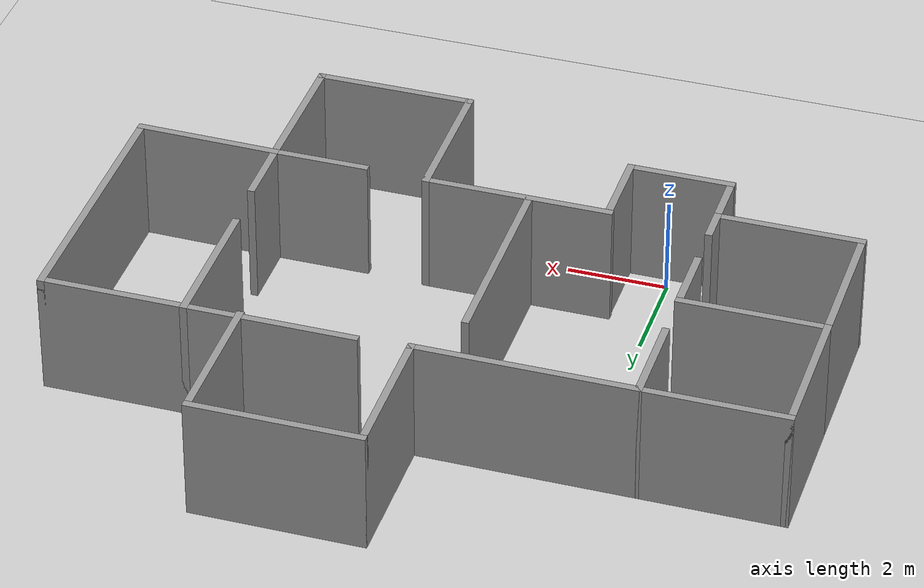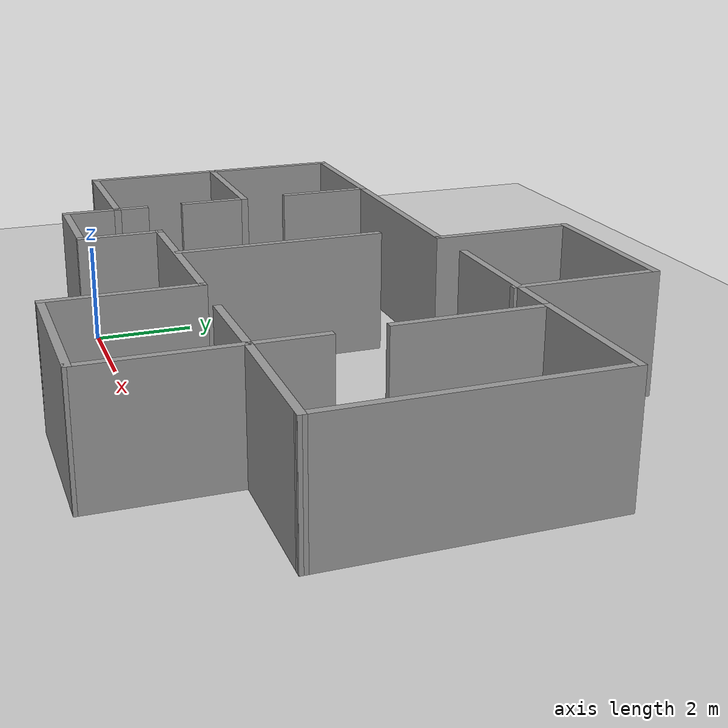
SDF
<sdf version="1.7">
 <world name="default">
  <light name="sun" type="directional">
   <pose>0 0 10 0 -0 0</pose>
   <diffuse>0.8 0.8 0.8 1</diffuse>
   <specular>0.2 0.2 0.2 1</specular>
   <attenuation>
    <range>1000</range>
    <constant>0.9</constant>
    <linear>0.01</linear>
    <quadratic>0.001</quadratic>
   </attenuation>
   <direction>-0.5 0.1 -0.9</direction>
   <spot><inner_angle>0</inner_angle><outer_angle>0</outer_angle><falloff>0</falloff></spot>
  </light>
  <model name="ground_plane">
   <static>1</static>
   <link name="link">
    <collision name="collision">
     <geometry><plane><normal>0 0 1</normal><size>100 100</size></plane></geometry>
     <surface><friction><ode><mu>100</mu><mu2>50</mu2></ode></friction></surface>
    </collision>
    <visual name="visual">
     <cast_shadows>0</cast_shadows>
     <geometry><plane><normal>0 0 1</normal><size>100 100</size></plane></geometry>
     <material>
      <script><uri>file://media/materials/scripts/gazebo.material</uri><name>Gazebo/Grey</name></script>
     </material>
    </visual>
   </link>
  </model>
  <gravity>0 0 -9.8</gravity>
  <magnetic_field>6e-06 2.3e-05 -4.2e-05</magnetic_field>
  <atmosphere type="adiabatic"/>
  <physics type="ode">
   <max_step_size>0.001</max_step_size>
   <real_time_factor>1</real_time_factor>
   <real_time_update_rate>1000</real_time_update_rate>
  </physics>
  <scene><ambient>0.4 0.4 0.4 1</ambient><background>0.7 0.7 0.7 1</background><shadows>1</shadows></scene>
  <spherical_coordinates>
   <surface_model>EARTH_WGS84</surface_model>
   <latitude_deg>0</latitude_deg>
   <longitude_deg>0</longitude_deg>
   <elevation>0</elevation>
   <heading_deg>0</heading_deg>
  </spherical_coordinates>
  <model name="indoors_home3">
   <pose>3.24657 3.85214 0 0 -0 0</pose>
   <link name="Wall_0">
    <collision name="Wall_0_Collision">
     <geometry><box><size>2.16048 0.15 2.5</size></box></geometry>
     <pose>0 0 1.25 0 -0 0</pose>
    </collision>
    <visual name="Wall_0_Visual">
     <pose>0 0 1.25 0 -0 0</pose>
     <geometry><box><size>2.16048 0.15 2.5</size></box></geometry>
     <material>
      <script><uri>file://media/materials/scripts/gazebo.material</uri><name>Gazebo/Grey</name></script>
      <ambient>1 1 1 1</ambient>
     </material>
     <meta><layer>0</layer></meta>
    </visual>
    <pose>-3.38051 -4.19973 0 0 -0 0</pose>
   </link>
   <link name="Wall_1">
    <collision name="Wall_1_Collision">
     <geometry><box><size>1.75 0.15 2.5</size></box></geometry>
     <pose>0 0 1.25 0 -0 0</pose>
    </collision>
    <visual name="Wall_1_Visual">
     <pose>0 0 1.25 0 -0 0</pose>
     <geometry><box><size>1.75 0.15 2.5</size></box></geometry>
     <material>
      <script><uri>file://media/materials/scripts/gazebo.material</uri><name>Gazebo/Grey</name></script>
      <ambient>1 1 1 1</ambient>
     </material>
     <meta><layer>0</layer></meta>
    </visual>
    <pose>-2.35778 -3.39973 0 0 -0 1.5708</pose>
   </link>
   <link name="Wall_10">
    <collision name="Wall_10_Collision">
     <geometry><box><size>0.75 0.15 2.5</size></box></geometry>
     <pose>0 0 1.25 0 -0 0</pose>
    </collision>
    <visual name="Wall_10_Visual">
     <pose>0 0 1.25 0 -0 0</pose>
     <geometry><box><size>0.75 0.15 2.5</size></box></geometry>
     <material>
      <script><uri>file://media/materials/scripts/gazebo.material</uri><name>Gazebo/Grey</name></script>
      <ambient>1 1 1 1</ambient>
     </material>
     <meta><layer>0</layer></meta>
    </visual>
    <pose>-4.38575 -2.79973 0 0 -0 1.5708</pose>
   </link>
   <link name="Wall_12">
    <collision name="Wall_12_Collision">
     <geometry><box><size>3 0.15 2.5</size></box></geometry>
     <pose>0 0 1.25 0 -0 0</pose>
    </collision>
    <visual name="Wall_12_Visual">
     <pose>0 0 1.25 0 -0 0</pose>
     <geometry><box><size>3 0.15 2.5</size></box></geometry>
     <material>
      <script><uri>file://media/materials/scripts/gazebo.material</uri><name>Gazebo/Grey</name></script>
      <ambient>1 1 1 1</ambient>
     </material>
     <meta><layer>0</layer></meta>
    </visual>
    <pose>-7.23574 1.17527 0 0 -0 1.5708</pose>
   </link>
   <link name="Wall_13">
    <collision name="Wall_13_Collision">
     <geometry><box><size>3 0.15 2.5</size></box></geometry>
     <pose>0 0 1.25 0 -0 0</pose>
    </collision>
    <visual name="Wall_13_Visual">
     <pose>0 0 1.25 0 -0 0</pose>
     <geometry><box><size>3 0.15 2.5</size></box></geometry>
     <material>
      <script><uri>file://media/materials/scripts/gazebo.material</uri><name>Gazebo/Grey</name></script>
      <ambient>1 1 1 1</ambient>
     </material>
     <meta><layer>0</layer></meta>
    </visual>
    <pose>-5.81074 2.60027 0 0 -0 0</pose>
   </link>
   <link name="Wall_14">
    <collision name="Wall_14_Collision">
     <geometry><box><size>2 0.15 2.5</size></box></geometry>
     <pose>0 0 1.25 0 -0 0</pose>
    </collision>
    <visual name="Wall_14_Visual">
     <pose>0 0 1.25 0 -0 0</pose>
     <geometry><box><size>2 0.15 2.5</size></box></geometry>
     <material>
      <script><uri>file://media/materials/scripts/gazebo.material</uri><name>Gazebo/Grey</name></script>
      <ambient>1 1 1 1</ambient>
     </material>
     <meta><layer>0</layer></meta>
    </visual>
    <pose>-4.38575 1.67527 0 0 -0 -1.5708</pose>
   </link>
   <link name="Wall_16">
    <collision name="Wall_16_Collision">
     <geometry><box><size>4.5 0.15 2.5</size></box></geometry>
     <pose>0 0 1.25 0 -0 0</pose>
    </collision>
    <visual name="Wall_16_Visual">
     <pose>0 0 1.25 0 -0 0</pose>
     <geometry><box><size>4.5 0.15 2.5</size></box></geometry>
     <material>
      <script><uri>file://media/materials/scripts/gazebo.material</uri><name>Gazebo/Grey</name></script>
      <ambient>1 1 1 1</ambient>
     </material>
     <meta><layer>0</layer></meta>
    </visual>
    <pose>-2.21075 2.60027 0 0 -0 0</pose>
   </link>
   <link name="Wall_18">
    <collision name="Wall_18_Collision">
     <geometry><box><size>4.25 0.15 2.5</size></box></geometry>
     <pose>0 0 1.25 0 -0 0</pose>
    </collision>
    <visual name="Wall_18_Visual">
     <pose>0 0 1.25 0 -0 0</pose>
     <geometry><box><size>4.25 0.15 2.5</size></box></geometry>
     <material>
      <script><uri>file://media/materials/scripts/gazebo.material</uri><name>Gazebo/Grey</name></script>
      <ambient>1 1 1 1</ambient>
     </material>
     <meta><layer>0</layer></meta>
    </visual>
    <pose>-0.774465 -0.501767 0 0 -0 -1.5708</pose>
   </link>
   <link name="Wall_2">
    <collision name="Wall_2_Collision">
     <geometry><box><size>3.83952 0.15 2.5</size></box></geometry>
     <pose>0 0 1.25 0 -0 0</pose>
    </collision>
    <visual name="Wall_2_Visual">
     <pose>0 0 1.25 0 -0 0</pose>
     <geometry><box><size>3.83952 0.15 2.5</size></box></geometry>
     <material>
      <script><uri>file://media/materials/scripts/gazebo.material</uri><name>Gazebo/Grey</name></script>
      <ambient>1 1 1 1</ambient>
     </material>
     <meta><layer>0</layer></meta>
    </visual>
    <pose>-0.530507 -2.59973 0 0 -0 0</pose>
   </link>
   <link name="Wall_27">
    <collision name="Wall_27_Collision">
     <geometry><box><size>3 0.15 2.5</size></box></geometry>
     <pose>0 0 1.25 0 -0 0</pose>
    </collision>
    <visual name="Wall_27_Visual">
     <pose>0 0 1.25 0 -0 0</pose>
     <geometry><box><size>3 0.15 2.5</size></box></geometry>
     <material>
      <script><uri>file://media/materials/scripts/gazebo.material</uri><name>Gazebo/Grey</name></script>
      <ambient>1 1 1 1</ambient>
     </material>
     <meta><layer>0</layer></meta>
    </visual>
    <pose>1.31425 -4.02473 0 0 -0 -1.5708</pose>
   </link>
   <link name="Wall_28">
    <collision name="Wall_28_Collision">
     <geometry><box><size>3.25 0.15 2.5</size></box></geometry>
     <pose>0 0 1.25 0 -0 0</pose>
    </collision>
    <visual name="Wall_28_Visual">
     <pose>0 0 1.25 0 -0 0</pose>
     <geometry><box><size>3.25 0.15 2.5</size></box></geometry>
     <material>
      <script><uri>file://media/materials/scripts/gazebo.material</uri><name>Gazebo/Grey</name></script>
      <ambient>1 1 1 1</ambient>
     </material>
     <meta><layer>0</layer></meta>
    </visual>
    <pose>2.86425 -5.44973 0 0 -0 0</pose>
   </link>
   <link name="Wall_29">
    <collision name="Wall_29_Collision">
     <geometry><box><size>2.95985 0.15 2.5</size></box></geometry>
     <pose>0 0 1.25 0 -0 0</pose>
    </collision>
    <visual name="Wall_29_Visual">
     <pose>0 0 1.25 0 -0 0</pose>
     <geometry><box><size>2.95985 0.15 2.5</size></box></geometry>
     <material>
      <script><uri>file://media/materials/scripts/gazebo.material</uri><name>Gazebo/Grey</name></script>
      <ambient>1 1 1 1</ambient>
     </material>
     <meta><layer>0</layer></meta>
    </visual>
    <pose>4.42431 -4.04485 0 0 -0 1.56364</pose>
   </link>
   <link name="Wall_30">
    <collision name="Wall_30_Collision">
     <geometry><box><size>2 0.15 2.5</size></box></geometry>
     <pose>0 0 1.25 0 -0 0</pose>
    </collision>
    <visual name="Wall_30_Visual">
     <pose>0 0 1.25 0 -0 0</pose>
     <geometry><box><size>2 0.15 2.5</size></box></geometry>
     <material>
      <script><uri>file://media/materials/scripts/gazebo.material</uri><name>Gazebo/Grey</name></script>
      <ambient>1 1 1 1</ambient>
     </material>
     <meta><layer>0</layer></meta>
    </visual>
    <pose>3.50937 -2.63996 0 0 -0 3.14159</pose>
   </link>
   <link name="Wall_32">
    <collision name="Wall_32_Collision">
     <geometry><box><size>1.5 0.15 2.5</size></box></geometry>
     <pose>0 0 1.25 0 -0 0</pose>
    </collision>
    <visual name="Wall_32_Visual">
     <pose>0 0 1.25 0 -0 0</pose>
     <geometry><box><size>1.5 0.15 2.5</size></box></geometry>
     <material>
      <script><uri>file://media/materials/scripts/gazebo.material</uri><name>Gazebo/Grey</name></script>
      <ambient>1 1 1 1</ambient>
     </material>
     <meta><layer>0</layer></meta>
    </visual>
    <pose>4.43437 -1.96496 0 0 -0 1.5708</pose>
   </link>
   <link name="Wall_34">
    <collision name="Wall_34_Collision">
     <geometry><box><size>3 0.15 2.5</size></box></geometry>
     <pose>0 0 1.25 0 -0 0</pose>
    </collision>
    <visual name="Wall_34_Visual">
     <pose>0 0 1.25 0 -0 0</pose>
     <geometry><box><size>3 0.15 2.5</size></box></geometry>
     <material>
      <script><uri>file://media/materials/scripts/gazebo.material</uri><name>Gazebo/Grey</name></script>
      <ambient>1 1 1 1</ambient>
     </material>
     <meta><layer>0</layer></meta>
    </visual>
    <pose>4.38457 1.24094 0 0 -0 1.5708</pose>
   </link>
   <link name="Wall_35">
    <collision name="Wall_35_Collision">
     <geometry><box><size>3 0.15 2.5</size></box></geometry>
     <pose>0 0 1.25 0 -0 0</pose>
    </collision>
    <visual name="Wall_35_Visual">
     <pose>0 0 1.25 0 -0 0</pose>
     <geometry><box><size>3 0.15 2.5</size></box></geometry>
     <material>
      <script><uri>file://media/materials/scripts/gazebo.material</uri><name>Gazebo/Grey</name></script>
      <ambient>1 1 1 1</ambient>
     </material>
     <meta><layer>0</layer></meta>
    </visual>
    <pose>5.80957 2.66594 0 0 -0 0</pose>
   </link>
   <link name="Wall_36">
    <collision name="Wall_36_Collision">
     <geometry><box><size>5.5 0.15 2.5</size></box></geometry>
     <pose>0 0 1.25 0 -0 0</pose>
    </collision>
    <visual name="Wall_36_Visual">
     <pose>0 0 1.25 0 -0 0</pose>
     <geometry><box><size>5.5 0.15 2.5</size></box></geometry>
     <material>
      <script><uri>file://media/materials/scripts/gazebo.material</uri><name>Gazebo/Grey</name></script>
      <ambient>1 1 1 1</ambient>
     </material>
     <meta><layer>0</layer></meta>
    </visual>
    <pose>7.23457 -0.009063 0 0 -0 -1.5708</pose>
   </link>
   <link name="Wall_37">
    <collision name="Wall_37_Collision">
     <geometry><box><size>2.95055 0.15 2.5</size></box></geometry>
     <pose>0 0 1.25 0 -0 0</pose>
    </collision>
    <visual name="Wall_37_Visual">
     <pose>0 0 1.25 0 -0 0</pose>
     <geometry><box><size>2.95055 0.15 2.5</size></box></geometry>
     <material>
      <script><uri>file://media/materials/scripts/gazebo.material</uri><name>Gazebo/Grey</name></script>
      <ambient>1 1 1 1</ambient>
     </material>
     <meta><layer>0</layer></meta>
    </visual>
    <pose>5.83447 -2.66201 0 0 -0 3.12584</pose>
   </link>
   <link name="Wall_39">
    <collision name="Wall_39_Collision">
     <geometry><box><size>3.5 0.15 2.5</size></box></geometry>
     <pose>0 0 1.25 0 -0 0</pose>
    </collision>
    <visual name="Wall_39_Visual">
     <pose>0 0 1.25 0 -0 0</pose>
     <geometry><box><size>3.5 0.15 2.5</size></box></geometry>
     <material>
      <script><uri>file://media/materials/scripts/gazebo.material</uri><name>Gazebo/Grey</name></script>
      <ambient>1 1 1 1</ambient>
     </material>
     <meta><layer>0</layer></meta>
    </visual>
    <pose>2.70957 2.66594 0 0 -0 0</pose>
   </link>
   <link name="Wall_4">
    <collision name="Wall_4_Collision">
     <geometry><box><size>1.25 0.15 2.5</size></box></geometry>
     <pose>0 0 1.25 0 -0 0</pose>
    </collision>
    <visual name="Wall_4_Visual">
     <pose>0 0 1.25 0 -0 0</pose>
     <geometry><box><size>1.25 0.15 2.5</size></box></geometry>
     <material>
      <script><uri>file://media/materials/scripts/gazebo.material</uri><name>Gazebo/Grey</name></script>
      <ambient>1 1 1 1</ambient>
     </material>
     <meta><layer>0</layer></meta>
    </visual>
    <pose>-4.38575 -3.64973 0 0 -0 1.5708</pose>
   </link>
   <link name="Wall_41">
    <collision name="Wall_41_Collision">
     <geometry><box><size>3 0.15 2.5</size></box></geometry>
     <pose>0 0 1.25 0 -0 0</pose>
    </collision>
    <visual name="Wall_41_Visual">
     <pose>0 0 1.25 0 -0 0</pose>
     <geometry><box><size>3 0.15 2.5</size></box></geometry>
     <material>
      <script><uri>file://media/materials/scripts/gazebo.material</uri><name>Gazebo/Grey</name></script>
      <ambient>1 1 1 1</ambient>
     </material>
     <meta><layer>0</layer></meta>
    </visual>
    <pose>-0.035746 4.02527 0 0 -0 1.5708</pose>
   </link>
   <link name="Wall_42">
    <collision name="Wall_42_Collision">
     <geometry><box><size>3.5 0.15 2.5</size></box></geometry>
     <pose>0 0 1.25 0 -0 0</pose>
    </collision>
    <visual name="Wall_42_Visual">
     <pose>0 0 1.25 0 -0 0</pose>
     <geometry><box><size>3.5 0.15 2.5</size></box></geometry>
     <material>
      <script><uri>file://media/materials/scripts/gazebo.material</uri><name>Gazebo/Grey</name></script>
      <ambient>1 1 1 1</ambient>
     </material>
     <meta><layer>0</layer></meta>
    </visual>
    <pose>1.63925 5.45027 0 0 -0 0</pose>
   </link>
   <link name="Wall_43">
    <collision name="Wall_43_Collision">
     <geometry><box><size>3 0.15 2.5</size></box></geometry>
     <pose>0 0 1.25 0 -0 0</pose>
    </collision>
    <visual name="Wall_43_Visual">
     <pose>0 0 1.25 0 -0 0</pose>
     <geometry><box><size>3 0.15 2.5</size></box></geometry>
     <material>
      <script><uri>file://media/materials/scripts/gazebo.material</uri><name>Gazebo/Grey</name></script>
      <ambient>1 1 1 1</ambient>
     </material>
     <meta><layer>0</layer></meta>
    </visual>
    <pose>3.31426 4.02527 0 0 -0 -1.5708</pose>
   </link>
   <link name="Wall_5">
    <collision name="Wall_5_Collision">
     <geometry><box><size>3 0.15 2.5</size></box></geometry>
     <pose>0 0 1.25 0 -0 0</pose>
    </collision>
    <visual name="Wall_5_Visual">
     <pose>0 0 1.25 0 -0 0</pose>
     <geometry><box><size>3 0.15 2.5</size></box></geometry>
     <material>
      <script><uri>file://media/materials/scripts/gazebo.material</uri><name>Gazebo/Grey</name></script>
      <ambient>1 1 1 1</ambient>
     </material>
     <meta><layer>0</layer></meta>
    </visual>
    <pose>-5.81074 -3.09973 0 0 -0 3.14159</pose>
   </link>
   <link name="Wall_6">
    <collision name="Wall_6_Collision">
     <geometry><box><size>3 0.15 2.5</size></box></geometry>
     <pose>0 0 1.25 0 -0 0</pose>
    </collision>
    <visual name="Wall_6_Visual">
     <pose>0 0 1.25 0 -0 0</pose>
     <geometry><box><size>3 0.15 2.5</size></box></geometry>
     <material>
      <script><uri>file://media/materials/scripts/gazebo.material</uri><name>Gazebo/Grey</name></script>
      <ambient>1 1 1 1</ambient>
     </material>
     <meta><layer>0</layer></meta>
    </visual>
    <pose>-7.23574 -1.67473 0 0 -0 1.5708</pose>
   </link>
   <link name="Wall_7">
    <collision name="Wall_7_Collision">
     <geometry><box><size>3 0.15 2.5</size></box></geometry>
     <pose>0 0 1.25 0 -0 0</pose>
    </collision>
    <visual name="Wall_7_Visual">
     <pose>0 0 1.25 0 -0 0</pose>
     <geometry><box><size>3 0.15 2.5</size></box></geometry>
     <material>
      <script><uri>file://media/materials/scripts/gazebo.material</uri><name>Gazebo/Grey</name></script>
      <ambient>1 1 1 1</ambient>
     </material>
     <meta><layer>0</layer></meta>
    </visual>
    <pose>-5.81074 -0.249733 0 0 -0 0</pose>
   </link>
   <link name="Wall_8">
    <collision name="Wall_8_Collision">
     <geometry><box><size>1.5 0.15 2.5</size></box></geometry>
     <pose>0 0 1.25 0 -0 0</pose>
    </collision>
    <visual name="Wall_8_Visual">
     <pose>0 0 1.25 0 -0 0</pose>
     <geometry><box><size>1.5 0.15 2.5</size></box></geometry>
     <material>
      <script><uri>file://media/materials/scripts/gazebo.material</uri><name>Gazebo/Grey</name></script>
      <ambient>1 1 1 1</ambient>
     </material>
     <meta><layer>0</layer></meta>
    </visual>
    <pose>-4.38575 -0.924733 0 0 -0 -1.5708</pose>
   </link>
   <static>1</static>
  </model>
 </world>
</sdf>
